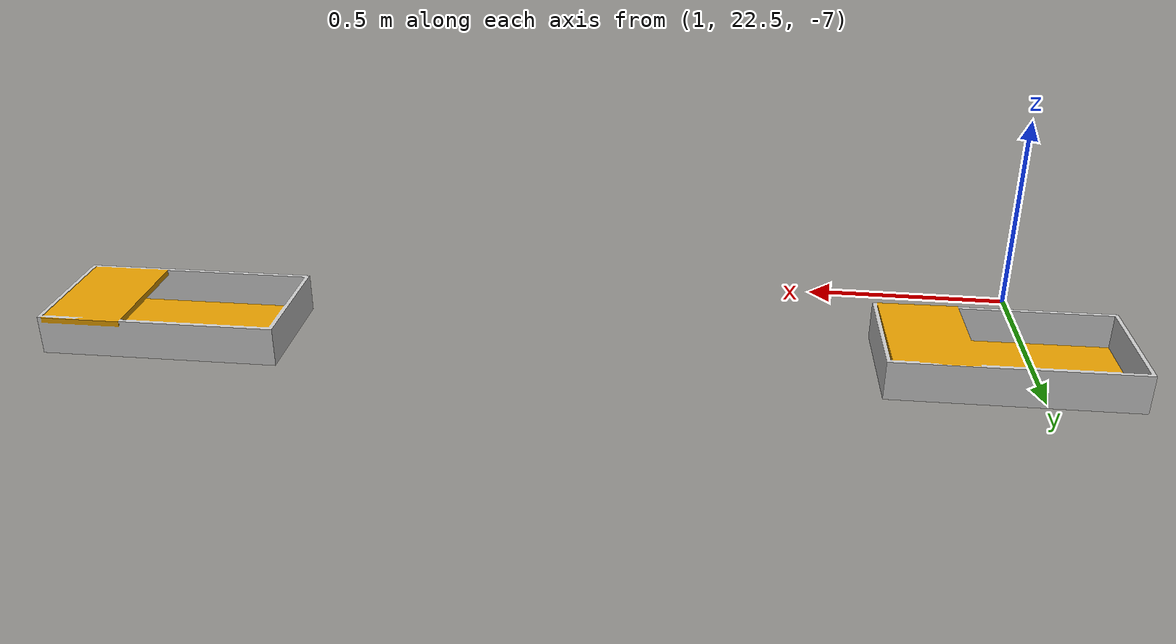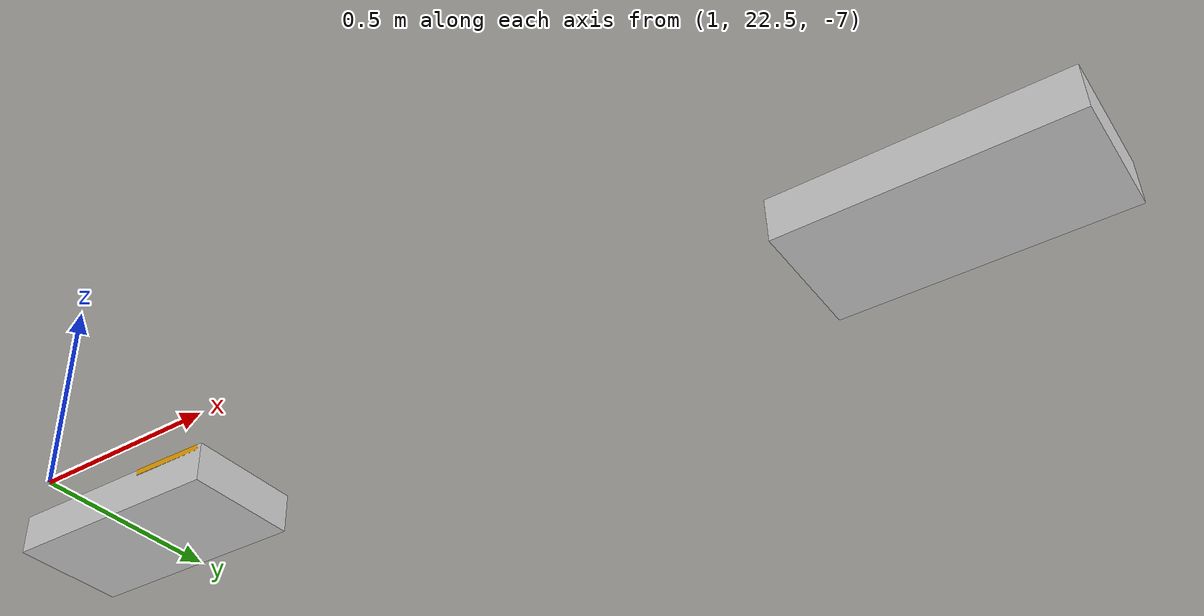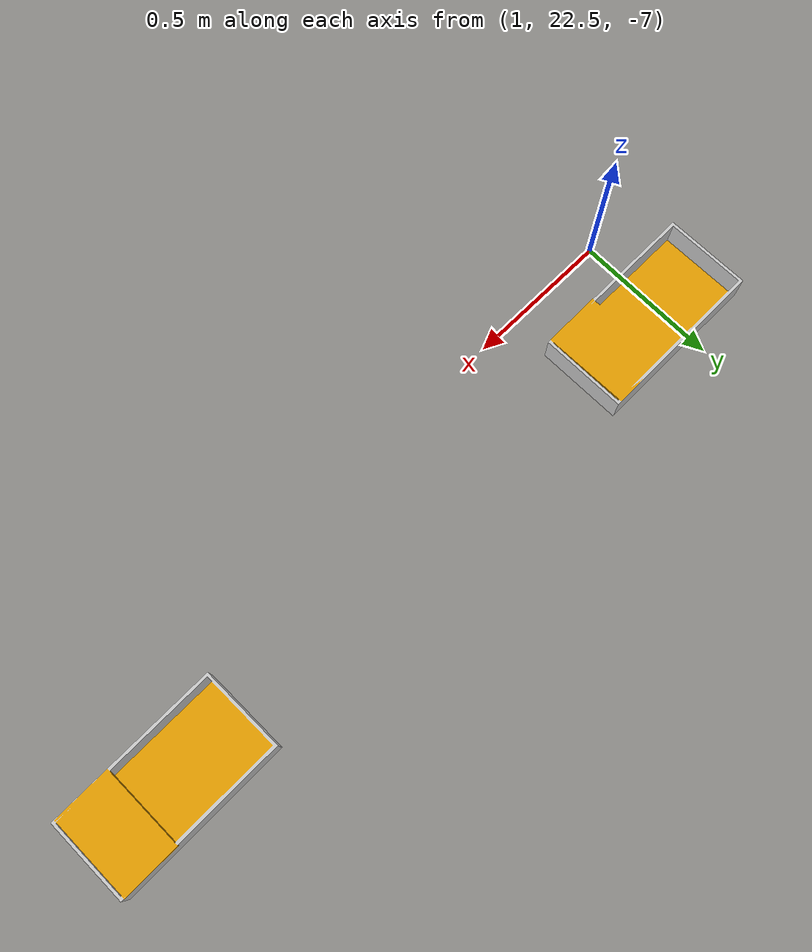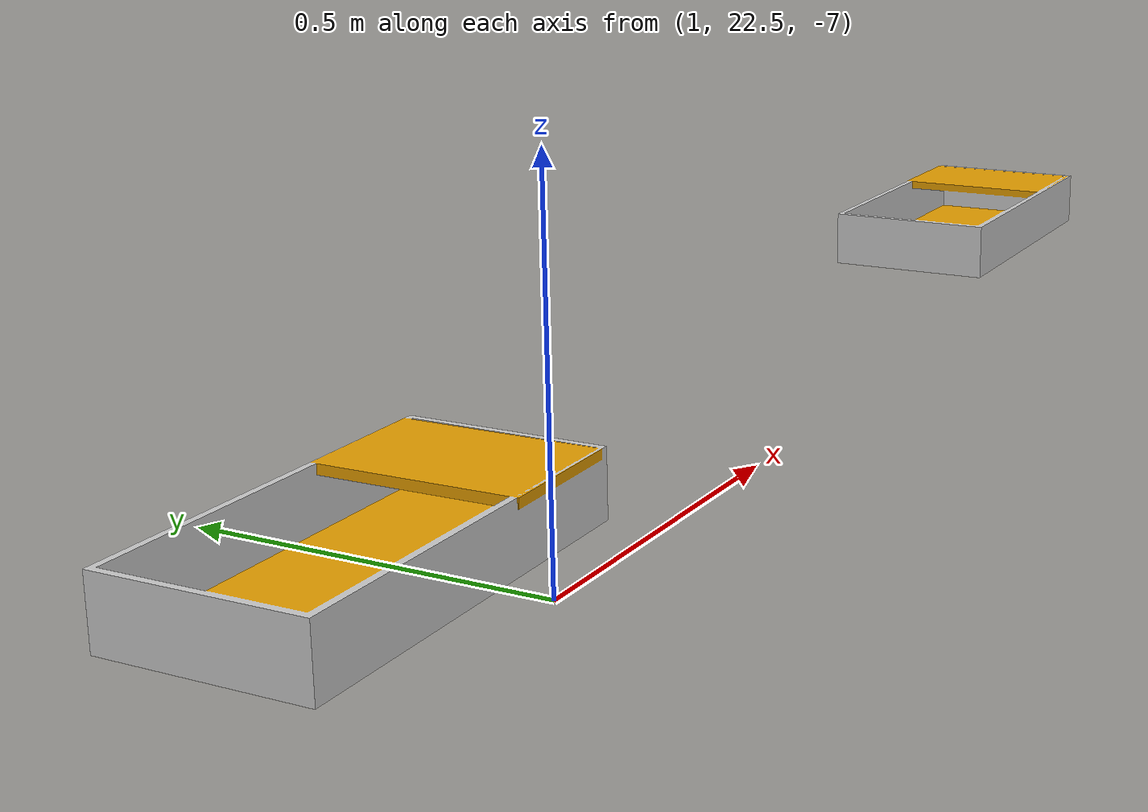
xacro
<?xml version="1.0"?>
<robot name="bin_1" xmlns:xacro="http://www.ros.org/wiki/xacro">
<!--Change .dae to binopen.dae, bintapadod.dae, bintapadoi.dae depending on the situation-->
<!-- Introducir meshes -->
<xacro:property name="visual_mesh_file" value="file://$(find sim_challenges)/models/meshes/bintapadoi.dae" />

<link name="bin1_base">
    <visual>
        <origin xyz="0 1.5 -7" rpy="0.0 0.0 0.0"/>
        <geometry>
            <mesh filename="${visual_mesh_file}" scale="1 1 1" />
        </geometry>
    </visual>

        <!-- Se deben cambiar los parametros reales-->
    <collision>
      <origin xyz="0 1.5 -7" rpy="0.0 0.0 0.0"/>
      <geometry>
        <mesh filename="${visual_mesh_file}" scale="1 1 1" />
      </geometry>
    </collision>

    <inertial>
      <origin xyz="0 1.5 -7" rpy="0.0 0.0 0.0"/>
      <mass value="1"/>
      <inertia
        ixx="1.0" ixy="0.0" ixz="0.0"
        iyy="1.0" iyz="0.0"
        izz="1.0"/>
    </inertial>
</link>
<gazebo reference="bin1_base">
  <selfCollide>0</selfCollide>
  <turnGravityOff>1</turnGravityOff>
</gazebo>

</robot>
